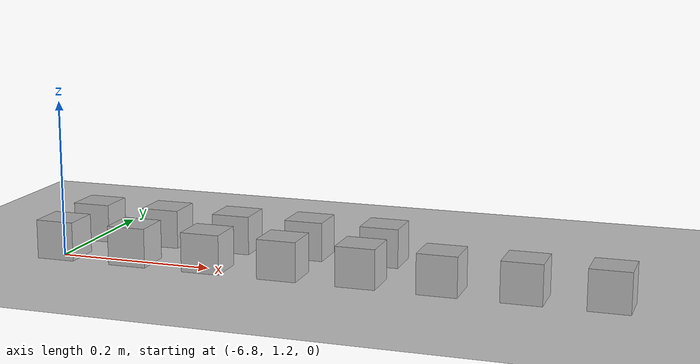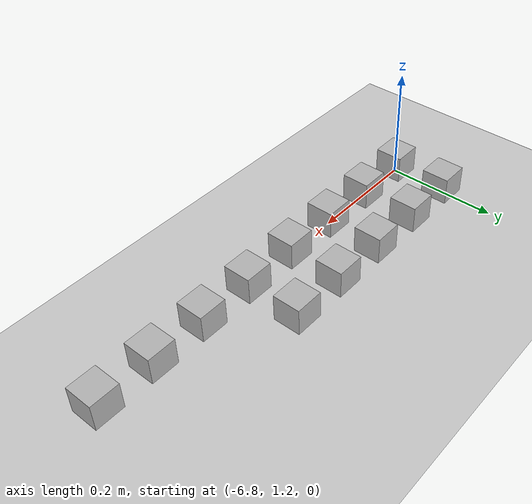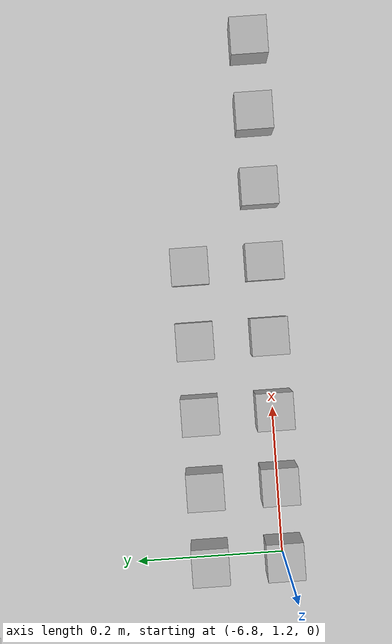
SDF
<sdf version="1.6">
 <world name="default">
  <model name="ground_plane">
   <static>1</static>
   <link name="link">
    <collision name="collision">
     <geometry><plane><normal>0 0 1</normal><size>100 100</size></plane></geometry>
     <surface><friction><ode><mu>100</mu><mu2>50</mu2></ode></friction></surface>
    </collision>
    <visual name="visual">
     <cast_shadows>0</cast_shadows>
     <geometry><plane><normal>0 0 1</normal><size>100 100</size></plane></geometry>
     <material>
      <script><uri>file://media/materials/scripts/gazebo.material</uri><name>Gazebo/Grey</name></script>
     </material>
    </visual>
   </link>
  </model>
  <model name="at64">
   <static>0</static>
   <link name="link">
    <inertial>
     <mass>0.01</mass>
     <inertia><ixx>4e-05</ixx><ixy>0</ixy><ixz>0</ixz><iyy>4e-05</iyy><iyz>0</iyz><izz>4e-05</izz></inertia>
    </inertial>
    <visual name="visual">
     <geometry><box><size>0.05 0.05 0.05</size></box></geometry>
     <material>
      <script>
       <uri>model://at0/materials/scripts</uri>
       <uri>model://at0/materials/textures</uri>
       <name>at0/Diffuse</name>
      </script>
     </material>
    </visual>
    <collision name="collision">
     <geometry><box><size>0.05 0.05 0.05</size></box></geometry>
     <surface><friction><ode><mu>0.8</mu><mu2>0.7</mu2></ode></friction></surface>
    </collision>
   </link>
   <pose>-6.8 1.2 0.025 0 -0 0</pose>
  </model>
  <model name="at65">
   <static>0</static>
   <link name="link">
    <inertial>
     <mass>0.01</mass>
     <inertia><ixx>4e-05</ixx><ixy>0</ixy><ixz>0</ixz><iyy>4e-05</iyy><iyz>0</iyz><izz>4e-05</izz></inertia>
    </inertial>
    <visual name="visual">
     <geometry><box><size>0.05 0.05 0.05</size></box></geometry>
     <material>
      <script>
       <uri>model://at0/materials/scripts</uri>
       <uri>model://at0/materials/textures</uri>
       <name>at0/Diffuse</name>
      </script>
     </material>
    </visual>
    <collision name="collision">
     <geometry><box><size>0.05 0.05 0.05</size></box></geometry>
     <surface><friction><ode><mu>0.8</mu><mu2>0.7</mu2></ode></friction></surface>
    </collision>
   </link>
   <pose>-6.7 1.2 0.025 0 -0 0</pose>
  </model>
  <model name="at66">
   <static>0</static>
   <link name="link">
    <inertial>
     <mass>0.01</mass>
     <inertia><ixx>4e-05</ixx><ixy>0</ixy><ixz>0</ixz><iyy>4e-05</iyy><iyz>0</iyz><izz>4e-05</izz></inertia>
    </inertial>
    <visual name="visual">
     <geometry><box><size>0.05 0.05 0.05</size></box></geometry>
     <material>
      <script>
       <uri>model://at0/materials/scripts</uri>
       <uri>model://at0/materials/textures</uri>
       <name>at0/Diffuse</name>
      </script>
     </material>
    </visual>
    <collision name="collision">
     <geometry><box><size>0.05 0.05 0.05</size></box></geometry>
     <surface><friction><ode><mu>0.8</mu><mu2>0.7</mu2></ode></friction></surface>
    </collision>
   </link>
   <pose>-6.6 1.2 0.025 0 -0 0</pose>
  </model>
  <model name="at67">
   <static>0</static>
   <link name="link">
    <inertial>
     <mass>0.01</mass>
     <inertia><ixx>4e-05</ixx><ixy>0</ixy><ixz>0</ixz><iyy>4e-05</iyy><iyz>0</iyz><izz>4e-05</izz></inertia>
    </inertial>
    <visual name="visual">
     <geometry><box><size>0.05 0.05 0.05</size></box></geometry>
     <material>
      <script>
       <uri>model://at0/materials/scripts</uri>
       <uri>model://at0/materials/textures</uri>
       <name>at0/Diffuse</name>
      </script>
     </material>
    </visual>
    <collision name="collision">
     <geometry><box><size>0.05 0.05 0.05</size></box></geometry>
     <surface><friction><ode><mu>0.8</mu><mu2>0.7</mu2></ode></friction></surface>
    </collision>
   </link>
   <pose>-6.5 1.2 0.025 0 -0 0</pose>
  </model>
  <model name="at68">
   <static>0</static>
   <link name="link">
    <inertial>
     <mass>0.01</mass>
     <inertia><ixx>4e-05</ixx><ixy>0</ixy><ixz>0</ixz><iyy>4e-05</iyy><iyz>0</iyz><izz>4e-05</izz></inertia>
    </inertial>
    <visual name="visual">
     <geometry><box><size>0.05 0.05 0.05</size></box></geometry>
     <material>
      <script>
       <uri>model://at0/materials/scripts</uri>
       <uri>model://at0/materials/textures</uri>
       <name>at0/Diffuse</name>
      </script>
     </material>
    </visual>
    <collision name="collision">
     <geometry><box><size>0.05 0.05 0.05</size></box></geometry>
     <surface><friction><ode><mu>0.8</mu><mu2>0.7</mu2></ode></friction></surface>
    </collision>
   </link>
   <pose>-6.4 1.2 0.025 0 -0 0</pose>
  </model>
  <model name="at69">
   <static>0</static>
   <link name="link">
    <inertial>
     <mass>0.01</mass>
     <inertia><ixx>4e-05</ixx><ixy>0</ixy><ixz>0</ixz><iyy>4e-05</iyy><iyz>0</iyz><izz>4e-05</izz></inertia>
    </inertial>
    <visual name="visual">
     <geometry><box><size>0.05 0.05 0.05</size></box></geometry>
     <material>
      <script>
       <uri>model://at0/materials/scripts</uri>
       <uri>model://at0/materials/textures</uri>
       <name>at0/Diffuse</name>
      </script>
     </material>
    </visual>
    <collision name="collision">
     <geometry><box><size>0.05 0.05 0.05</size></box></geometry>
     <surface><friction><ode><mu>0.8</mu><mu2>0.7</mu2></ode></friction></surface>
    </collision>
   </link>
   <pose>-6.3 1.2 0.025 0 -0 0</pose>
  </model>
  <model name="at70">
   <static>0</static>
   <link name="link">
    <inertial>
     <mass>0.01</mass>
     <inertia><ixx>4e-05</ixx><ixy>0</ixy><ixz>0</ixz><iyy>4e-05</iyy><iyz>0</iyz><izz>4e-05</izz></inertia>
    </inertial>
    <visual name="visual">
     <geometry><box><size>0.05 0.05 0.05</size></box></geometry>
     <material>
      <script>
       <uri>model://at0/materials/scripts</uri>
       <uri>model://at0/materials/textures</uri>
       <name>at0/Diffuse</name>
      </script>
     </material>
    </visual>
    <collision name="collision">
     <geometry><box><size>0.05 0.05 0.05</size></box></geometry>
     <surface><friction><ode><mu>0.8</mu><mu2>0.7</mu2></ode></friction></surface>
    </collision>
   </link>
   <pose>-6.2 1.2 0.025 0 -0 0</pose>
  </model>
  <model name="at71">
   <static>0</static>
   <link name="link">
    <inertial>
     <mass>0.01</mass>
     <inertia><ixx>4e-05</ixx><ixy>0</ixy><ixz>0</ixz><iyy>4e-05</iyy><iyz>0</iyz><izz>4e-05</izz></inertia>
    </inertial>
    <visual name="visual">
     <geometry><box><size>0.05 0.05 0.05</size></box></geometry>
     <material>
      <script>
       <uri>model://at0/materials/scripts</uri>
       <uri>model://at0/materials/textures</uri>
       <name>at0/Diffuse</name>
      </script>
     </material>
    </visual>
    <collision name="collision">
     <geometry><box><size>0.05 0.05 0.05</size></box></geometry>
     <surface><friction><ode><mu>0.8</mu><mu2>0.7</mu2></ode></friction></surface>
    </collision>
   </link>
   <pose>-6.1 1.2 0.025 0 -0 0</pose>
  </model>
  <model name="at72">
   <static>0</static>
   <link name="link">
    <inertial>
     <mass>0.01</mass>
     <inertia><ixx>4e-05</ixx><ixy>0</ixy><ixz>0</ixz><iyy>4e-05</iyy><iyz>0</iyz><izz>4e-05</izz></inertia>
    </inertial>
    <visual name="visual">
     <geometry><box><size>0.05 0.05 0.05</size></box></geometry>
     <material>
      <script>
       <uri>model://at0/materials/scripts</uri>
       <uri>model://at0/materials/textures</uri>
       <name>at0/Diffuse</name>
      </script>
     </material>
    </visual>
    <collision name="collision">
     <geometry><box><size>0.05 0.05 0.05</size></box></geometry>
     <surface><friction><ode><mu>0.8</mu><mu2>0.7</mu2></ode></friction></surface>
    </collision>
   </link>
   <pose>-6.8 1.3 0.025 0 -0 0</pose>
  </model>
  <model name="at73">
   <static>0</static>
   <link name="link">
    <inertial>
     <mass>0.01</mass>
     <inertia><ixx>4e-05</ixx><ixy>0</ixy><ixz>0</ixz><iyy>4e-05</iyy><iyz>0</iyz><izz>4e-05</izz></inertia>
    </inertial>
    <visual name="visual">
     <geometry><box><size>0.05 0.05 0.05</size></box></geometry>
     <material>
      <script>
       <uri>model://at0/materials/scripts</uri>
       <uri>model://at0/materials/textures</uri>
       <name>at0/Diffuse</name>
      </script>
     </material>
    </visual>
    <collision name="collision">
     <geometry><box><size>0.05 0.05 0.05</size></box></geometry>
     <surface><friction><ode><mu>0.8</mu><mu2>0.7</mu2></ode></friction></surface>
    </collision>
   </link>
   <pose>-6.7 1.3 0.025 0 -0 0</pose>
  </model>
  <model name="at74">
   <static>0</static>
   <link name="link">
    <inertial>
     <mass>0.01</mass>
     <inertia><ixx>4e-05</ixx><ixy>0</ixy><ixz>0</ixz><iyy>4e-05</iyy><iyz>0</iyz><izz>4e-05</izz></inertia>
    </inertial>
    <visual name="visual">
     <geometry><box><size>0.05 0.05 0.05</size></box></geometry>
     <material>
      <script>
       <uri>model://at0/materials/scripts</uri>
       <uri>model://at0/materials/textures</uri>
       <name>at0/Diffuse</name>
      </script>
     </material>
    </visual>
    <collision name="collision">
     <geometry><box><size>0.05 0.05 0.05</size></box></geometry>
     <surface><friction><ode><mu>0.8</mu><mu2>0.7</mu2></ode></friction></surface>
    </collision>
   </link>
   <pose>-6.6 1.3 0.025 0 -0 0</pose>
  </model>
  <model name="at75">
   <static>0</static>
   <link name="link">
    <inertial>
     <mass>0.01</mass>
     <inertia><ixx>4e-05</ixx><ixy>0</ixy><ixz>0</ixz><iyy>4e-05</iyy><iyz>0</iyz><izz>4e-05</izz></inertia>
    </inertial>
    <visual name="visual">
     <geometry><box><size>0.05 0.05 0.05</size></box></geometry>
     <material>
      <script>
       <uri>model://at0/materials/scripts</uri>
       <uri>model://at0/materials/textures</uri>
       <name>at0/Diffuse</name>
      </script>
     </material>
    </visual>
    <collision name="collision">
     <geometry><box><size>0.05 0.05 0.05</size></box></geometry>
     <surface><friction><ode><mu>0.8</mu><mu2>0.7</mu2></ode></friction></surface>
    </collision>
   </link>
   <pose>-6.5 1.3 0.025 0 -0 0</pose>
  </model>
  <model name="at76">
   <static>0</static>
   <link name="link">
    <inertial>
     <mass>0.01</mass>
     <inertia><ixx>4e-05</ixx><ixy>0</ixy><ixz>0</ixz><iyy>4e-05</iyy><iyz>0</iyz><izz>4e-05</izz></inertia>
    </inertial>
    <visual name="visual">
     <geometry><box><size>0.05 0.05 0.05</size></box></geometry>
     <material>
      <script>
       <uri>model://at0/materials/scripts</uri>
       <uri>model://at0/materials/textures</uri>
       <name>at0/Diffuse</name>
      </script>
     </material>
    </visual>
    <collision name="collision">
     <geometry><box><size>0.05 0.05 0.05</size></box></geometry>
     <surface><friction><ode><mu>0.8</mu><mu2>0.7</mu2></ode></friction></surface>
    </collision>
   </link>
   <pose>-6.4 1.3 0.025 0 -0 0</pose>
  </model>
 </world>
</sdf>
